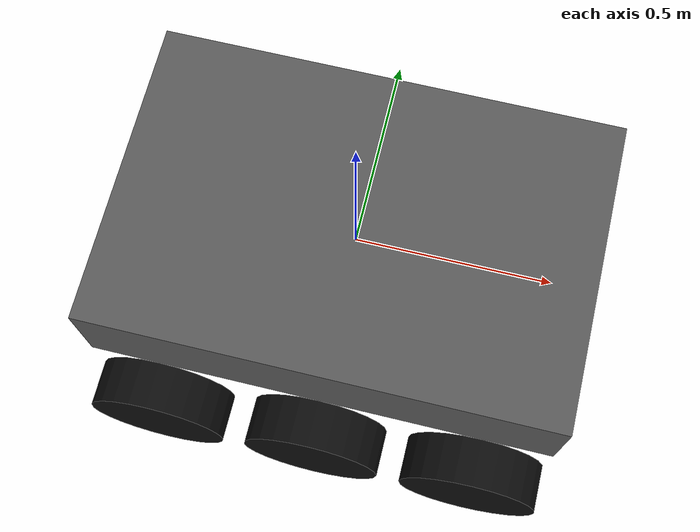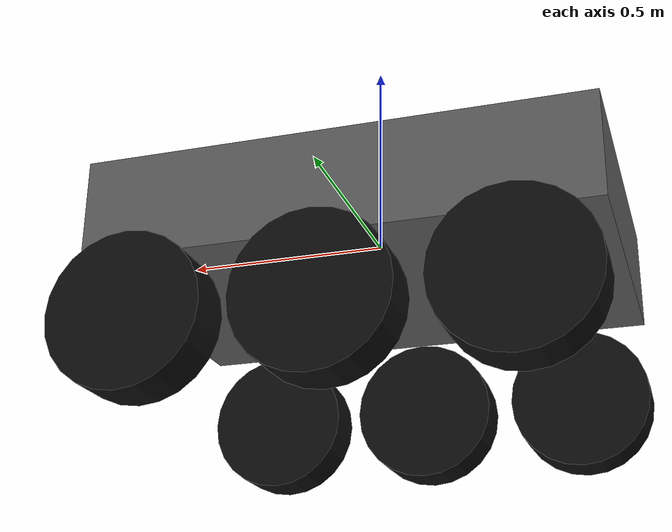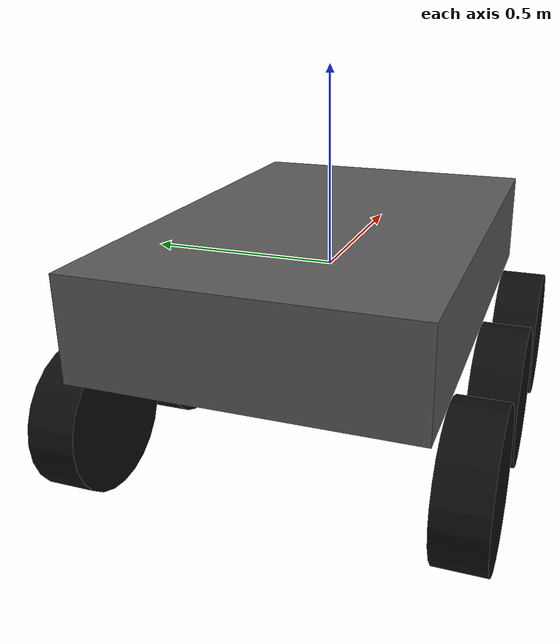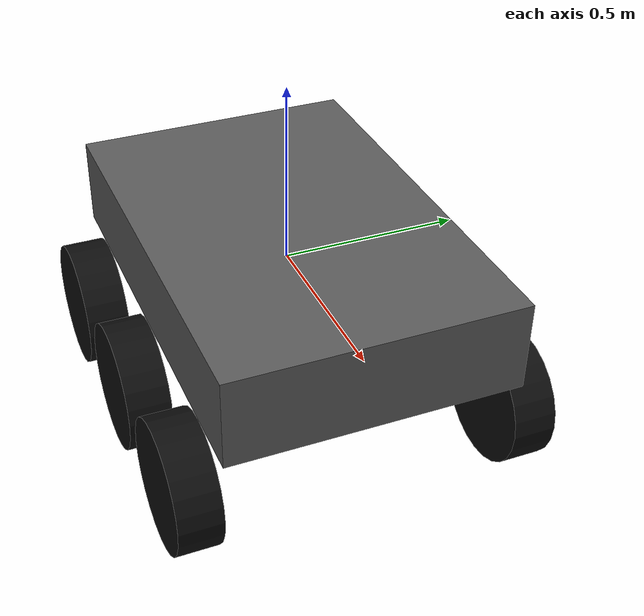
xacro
<?xml version="1.0"?>

<robot xmlns:xacro="http://www.ros.org/wiki/xacro"
       name="basic_mars_rover">

  <!-- PARAMETERS                                            -->

  <xacro:property name="chassis_length" value="1.2"/>
  <xacro:property name="chassis_width"  value="0.8"/>
  <xacro:property name="chassis_height" value="0.25"/>

  <xacro:property name="wheel_radius" value="0.18"/>
  <xacro:property name="wheel_width"  value="0.12"/>

  <xacro:property name="wheel_mass" value="1.0"/>
  <xacro:property name="chassis_mass" value="20.0"/>

  <!-- MATERIALS                                             -->

  <material name="chassis_material">
    <color rgba="0.35 0.35 0.35 1.0"/>
  </material>

  <material name="wheel_material">
    <color rgba="0.05 0.05 0.05 1.0"/>
  </material>

  <!-- BASE / CHASSIS                                        -->

  <link name="base_link">

    <visual>

      <origin xyz="0 0 0"/>

      <geometry>
        <box size="${chassis_length} ${chassis_width} ${chassis_height}"/>
      </geometry>

      <material name="chassis_material"/>

    </visual>

    <collision>

      <origin xyz="0 0 0"/>

      <geometry>
        <box size="${chassis_length} ${chassis_width} ${chassis_height}"/>
      </geometry>

    </collision>

    <inertial>

      <origin xyz="0 0 0"/>

      <mass value="${chassis_mass}"/>

      <inertia
        ixx="${(1/12) * chassis_mass * (chassis_width*chassis_width + chassis_height*chassis_height)}"
        ixy="0"
        ixz="0"
        iyy="${(1/12) * chassis_mass * (chassis_length*chassis_length + chassis_height*chassis_height)}"
        iyz="0"
        izz="${(1/12) * chassis_mass * (chassis_length*chassis_length + chassis_width*chassis_width)}"/>

    </inertial>

  </link>

  <!-- WHEEL MACRO                                           -->

  <xacro:macro name="wheel" params="name x y">

    <link name="${name}_wheel_link">

      <visual>

        <!-- Rotate cylinder so axle is along Y -->
        <origin
          xyz="0 0 0"
          rpy="${pi/2} 0 0"/>

        <geometry>

          <cylinder
            radius="${wheel_radius}"
            length="${wheel_width}"/>

        </geometry>

        <material name="wheel_material"/>

      </visual>

      <collision>

        <origin
          xyz="0 0 0"
          rpy="${pi/2} 0 0"/>

        <geometry>

          <cylinder
            radius="${wheel_radius}"
            length="${wheel_width}"/>

        </geometry>

      </collision>

      <inertial>

        <origin xyz="0 0 0"/>

        <mass value="${wheel_mass}"/>

        <inertia
          ixx="${(1/12) * wheel_mass * (3*wheel_radius*wheel_radius + wheel_width*wheel_width)}"
          ixy="0"
          ixz="0"
          iyy="${(1/12) * wheel_mass * (3*wheel_radius*wheel_radius + wheel_width*wheel_width)}"
          iyz="0"
          izz="${0.5 * wheel_mass * wheel_radius*wheel_radius}"/>

      </inertial>

    </link>

    <!-- WHEEL JOINT                                        -->

    <joint
      name="${name}_wheel_joint"
      type="continuous">

      <parent link="base_link"/>

      <child link="${name}_wheel_link"/>

      <!-- Wheel center is below chassis -->
      <origin
        xyz="${x} ${y} ${-chassis_height/2 - wheel_radius}"
        rpy="0 0 0"/>

      <!-- Wheel axle -->
      <axis xyz="0 1 0"/>

    </joint>

  </xacro:macro>

  <!-- LEFT WHEELS                                           -->

  <xacro:wheel
    name="left_front"
    x="0.42"
    y="0.46"/>

  <xacro:wheel
    name="left_middle"
    x="0.0"
    y="0.46"/>

  <xacro:wheel
    name="left_rear"
    x="-0.42"
    y="0.46"/>

  <!-- RIGHT WHEELS                                          -->

  <xacro:wheel
    name="right_front"
    x="0.42"
    y="-0.46"/>

  <xacro:wheel
    name="right_middle"
    x="0.0"
    y="-0.46"/>

  <xacro:wheel
    name="right_rear"
    x="-0.42"
    y="-0.46"/>

  <!-- ROS 2 CONTROL                                        -->

  <ros2_control
    name="GazeboSystem"
    type="system">

    <hardware>
      <plugin>gz_ros2_control/GazeboSimSystem</plugin>
    </hardware>

    <!-- LEFT FRONT -->

    <joint name="left_front_wheel_joint">

      <command_interface name="velocity"/>

      <state_interface name="position"/>
      <state_interface name="velocity"/>

    </joint>

    <!-- LEFT MIDDLE -->

    <joint name="left_middle_wheel_joint">

      <command_interface name="velocity"/>

      <state_interface name="position"/>
      <state_interface name="velocity"/>

    </joint>

    <!-- LEFT REAR -->

    <joint name="left_rear_wheel_joint">

      <command_interface name="velocity"/>

      <state_interface name="position"/>
      <state_interface name="velocity"/>

    </joint>

    <!-- RIGHT FRONT -->

    <joint name="right_front_wheel_joint">

      <command_interface name="velocity"/>

      <state_interface name="position"/>
      <state_interface name="velocity"/>

    </joint>

    <!-- RIGHT MIDDLE -->

    <joint name="right_middle_wheel_joint">

      <command_interface name="velocity"/>

      <state_interface name="position"/>
      <state_interface name="velocity"/>

    </joint>

    <!-- RIGHT REAR -->

    <joint name="right_rear_wheel_joint">

      <command_interface name="velocity"/>

      <state_interface name="position"/>
      <state_interface name="velocity"/>

    </joint>

  </ros2_control>

  <!-- GAZEBO ROS 2 CONTROL                                 -->

  <gazebo>

    <plugin
      filename="/opt/ros/jazzy/lib/libgz_ros2_control-system.so"
      name="gz_ros2_control::GazeboSimROS2ControlPlugin">

      <parameters>
        $(find mars_rover_description)/config/controllers.yaml
      </parameters>

    </plugin>

  </gazebo>

</robot>
